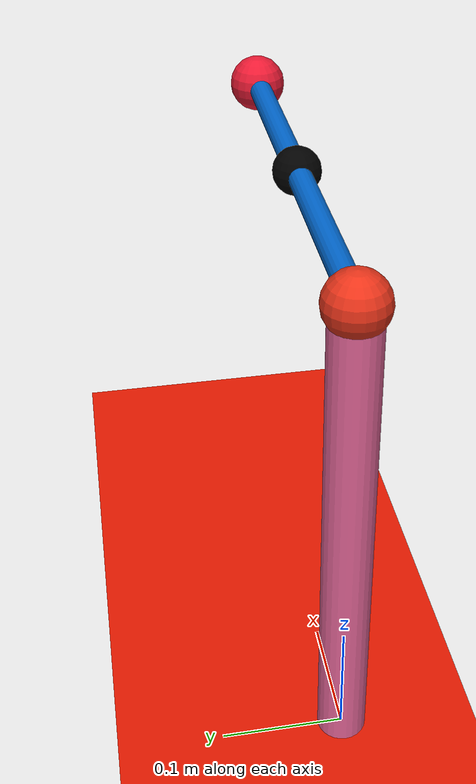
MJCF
<mujoco model="Arm">
	<compiler angle="radian" inertiafromgeom="true"/>
	<default>
		<joint armature="1" damping="1" limited="true"/>
		<geom contype="0" friction="1 0.1 0.1" rgba="0.2 0.2 0.7 1"/>
		<default class="target">
			<geom contype="0" friction="1 0.1 0.1" rgba="0.9 0.2 0 1"/>
		</default>
	</default>

	<option integrator="RK4" iterations="50" solver="PGS" timestep="0.003">
	</option>
	<worldbody>
		<!-- Arena -->
		<geom conaffinity="0" contype="0" name="ground" pos="0 0 0" rgba="0.9 0.1 0.0 1" size="1 1 10" type="plane"/>

		<!-- Base -->
		<geom conaffinity="0" contype="0" fromto="0 0 0 0 0 0.4" name="base" rgba="0.9 0.4 0.6 1" size=".02" type="cylinder"/>

		<!-- Arm -->
		<body name="robot_arm" pos="0 0 0.41">
			<geom name="robot_shoulder" pos="0 0 0" rgba="0.9 0.2 0.1 0.9" size=".025" type="sphere"/>
			<joint axis="0 0 1" limited="false" name="robot_shoulder_joint" pos="0 0 0" type="hinge"/>
			<geom fromto="0 0 0 0.2 0 0" name="robot_arm0" rgba="0.0 0.4 0.8 0.9" size=".01" type="capsule"/>

			<!-- Lower Arm -->
			<body name="robot_arm1" pos="0.21 0 0">
				<joint axis="0 1 0" limited="false" name="robot_elbow_joint" pos="0 0 0" type="hinge"/>
				<geom fromto="0 0 0 0.2 0 0" name="robot_arm1" rgba="0.0 0.4 0.8 0.9" size=".01" type="capsule"/>
				<geom contype="0" pos="0 0 0" name="robot_elbow" rgba="0.0 0.0 0.0 0.9" size=".02" type="sphere"/>

				<!-- Hand -->
				<body name="robot_hand" pos="0.2 0 0">
					<geom contype="0" pos="0 0 0" name="robot_hand" rgba="0.9 0.1 0.2 0.9" size=".025" type="sphere"/>
				</body>
			</body>
		</body>
		<!-- Target -->
		<body name="target_arm" pos="0 0 0.41" childclass="target">
			<geom name="target_shoulder" pos="0 0 0"  size=".025" type="sphere"/>
			<joint axis="0 0 1" limited="false" name="target_shoulder_joint" pos="0 0 0" type="hinge"/>
			<geom fromto="0 0 0 0.2 0 0" name="target_arm0"  size=".01" type="capsule"/>

			<!-- Lower Arm -->
			<body name="target_arm1" pos="0.21 0 0">
				<joint stiffness="1" springref="1" axis="0 1 0" limited="false" name="target_elbow_joint" pos="0 0 0" type="hinge"/>
				<geom fromto="0 0 0 0.2 0 0" name="target_arm1" rgba="0.9 0.2 0.9 0.3" size=".01" type="capsule"/>
				<geom contype="0" pos="0 0 0" name="target_elbow" rgba="0.0 0.0 0.0 0.9" size=".02" type="sphere"/>
				<!-- Hand -->
				<body name="target_hand" pos="0.2 0 0">
					<geom contype="0" pos="0 0 0" name="target_hand" rgba="1.0 0.0 0.0 0.9" size=".025" type="sphere"/>
				</body>
			</body>
		</body>
	</worldbody>
	<actuator>
		<motor ctrllimited="true" ctrlrange="-1.0 1.0" gear="200.0" joint="shoulder_joint"/>
		<motor ctrllimited="true" ctrlrange="-1.0 1.0" gear="200.0" joint="elbow_joint"/>
	</actuator>
</mujoco>
